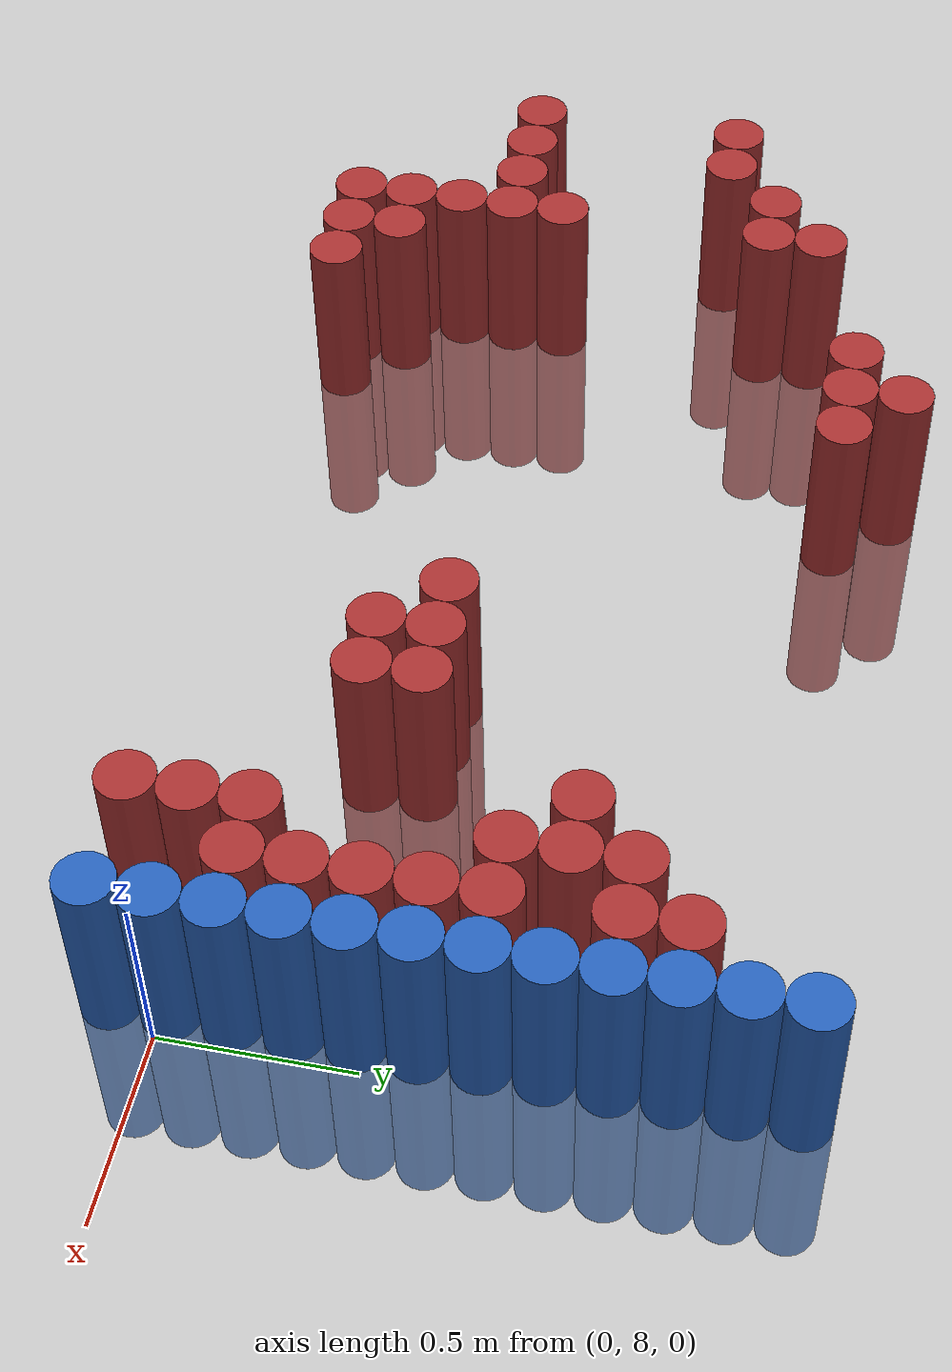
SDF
<sdf version="1.6">
 <world name="default">
  <model name="ground_plane">
   <static>1</static>
   <link name="link">
    <collision name="collision">
     <geometry><plane><normal>0 0 1</normal><size>100 100</size></plane></geometry>
     <surface><friction><ode><mu>100</mu><mu2>50</mu2></ode></friction></surface>
    </collision>
    <visual name="visual">
     <cast_shadows>0</cast_shadows>
     <geometry><plane><normal>0 0 1</normal><size>100 100</size></plane></geometry>
     <material>
      <script><uri>file://media/materials/scripts/gazebo.material</uri><name>Gazebo/Grey</name></script>
     </material>
    </visual>
   </link>
  </model>
  <model name="unit_cylinder_222">
   <static>1</static>
   <pose>-3.075000 8.325000 0.000000 0.000000 0.000000 0.000000</pose>
   <link name="link">
    <inertial>
     <mass>1</mass>
     <inertia><ixx>0.145833</ixx><ixy>0</ixy><ixz>0</ixz><iyy>0.145833</iyy><iyz>0</iyz><izz>0.125</izz></inertia>
    </inertial>
    <collision name="collision">
     <geometry><cylinder><radius>0.075000</radius><length>1</length></cylinder></geometry>
    </collision>
    <visual name="visual">
     <geometry><cylinder><radius>0.075000</radius><length>1</length></cylinder></geometry>
     <material>
      <ambient>0.648000 0.192000 0.192000 1</ambient>
      <diffuse>0.648000 0.192000 0.192000 1</diffuse>
     </material>
     <material>
      <script><name>Gazebo/Grey</name><uri>file://media/materials/scripts/gazebo.material</uri></script>
     </material>
    </visual>
   </link>
  </model>
  <model name="unit_cylinder_223">
   <static>1</static>
   <pose>-3.075000 8.925000 0.000000 0.000000 0.000000 0.000000</pose>
   <link name="link">
    <inertial>
     <mass>1</mass>
     <inertia><ixx>0.145833</ixx><ixy>0</ixy><ixz>0</ixz><iyy>0.145833</iyy><iyz>0</iyz><izz>0.125</izz></inertia>
    </inertial>
    <collision name="collision">
     <geometry><cylinder><radius>0.075000</radius><length>1</length></cylinder></geometry>
    </collision>
    <visual name="visual">
     <geometry><cylinder><radius>0.075000</radius><length>1</length></cylinder></geometry>
     <material>
      <ambient>0.648000 0.192000 0.192000 1</ambient>
      <diffuse>0.648000 0.192000 0.192000 1</diffuse>
     </material>
     <material>
      <script><name>Gazebo/Grey</name><uri>file://media/materials/scripts/gazebo.material</uri></script>
     </material>
    </visual>
   </link>
  </model>
  <model name="unit_cylinder_230">
   <static>1</static>
   <pose>-2.925000 8.325000 0.000000 0.000000 0.000000 0.000000</pose>
   <link name="link">
    <inertial>
     <mass>1</mass>
     <inertia><ixx>0.145833</ixx><ixy>0</ixy><ixz>0</ixz><iyy>0.145833</iyy><iyz>0</iyz><izz>0.125</izz></inertia>
    </inertial>
    <collision name="collision">
     <geometry><cylinder><radius>0.075000</radius><length>1</length></cylinder></geometry>
    </collision>
    <visual name="visual">
     <geometry><cylinder><radius>0.075000</radius><length>1</length></cylinder></geometry>
     <material>
      <ambient>0.648000 0.192000 0.192000 1</ambient>
      <diffuse>0.648000 0.192000 0.192000 1</diffuse>
     </material>
     <material>
      <script><name>Gazebo/Grey</name><uri>file://media/materials/scripts/gazebo.material</uri></script>
     </material>
    </visual>
   </link>
  </model>
  <model name="unit_cylinder_231">
   <static>1</static>
   <pose>-2.925000 8.925000 0.000000 0.000000 0.000000 0.000000</pose>
   <link name="link">
    <inertial>
     <mass>1</mass>
     <inertia><ixx>0.145833</ixx><ixy>0</ixy><ixz>0</ixz><iyy>0.145833</iyy><iyz>0</iyz><izz>0.125</izz></inertia>
    </inertial>
    <collision name="collision">
     <geometry><cylinder><radius>0.075000</radius><length>1</length></cylinder></geometry>
    </collision>
    <visual name="visual">
     <geometry><cylinder><radius>0.075000</radius><length>1</length></cylinder></geometry>
     <material>
      <ambient>0.648000 0.192000 0.192000 1</ambient>
      <diffuse>0.648000 0.192000 0.192000 1</diffuse>
     </material>
     <material>
      <script><name>Gazebo/Grey</name><uri>file://media/materials/scripts/gazebo.material</uri></script>
     </material>
    </visual>
   </link>
  </model>
  <model name="unit_cylinder_237">
   <static>1</static>
   <pose>-2.775000 8.325000 0.000000 0.000000 0.000000 0.000000</pose>
   <link name="link">
    <inertial>
     <mass>1</mass>
     <inertia><ixx>0.145833</ixx><ixy>0</ixy><ixz>0</ixz><iyy>0.145833</iyy><iyz>0</iyz><izz>0.125</izz></inertia>
    </inertial>
    <collision name="collision">
     <geometry><cylinder><radius>0.075000</radius><length>1</length></cylinder></geometry>
    </collision>
    <visual name="visual">
     <geometry><cylinder><radius>0.075000</radius><length>1</length></cylinder></geometry>
     <material>
      <ambient>0.648000 0.192000 0.192000 1</ambient>
      <diffuse>0.648000 0.192000 0.192000 1</diffuse>
     </material>
     <material>
      <script><name>Gazebo/Grey</name><uri>file://media/materials/scripts/gazebo.material</uri></script>
     </material>
    </visual>
   </link>
  </model>
  <model name="unit_cylinder_238">
   <static>1</static>
   <pose>-2.775000 9.075000 0.000000 0.000000 0.000000 0.000000</pose>
   <link name="link">
    <inertial>
     <mass>1</mass>
     <inertia><ixx>0.145833</ixx><ixy>0</ixy><ixz>0</ixz><iyy>0.145833</iyy><iyz>0</iyz><izz>0.125</izz></inertia>
    </inertial>
    <collision name="collision">
     <geometry><cylinder><radius>0.075000</radius><length>1</length></cylinder></geometry>
    </collision>
    <visual name="visual">
     <geometry><cylinder><radius>0.075000</radius><length>1</length></cylinder></geometry>
     <material>
      <ambient>0.648000 0.192000 0.192000 1</ambient>
      <diffuse>0.648000 0.192000 0.192000 1</diffuse>
     </material>
     <material>
      <script><name>Gazebo/Grey</name><uri>file://media/materials/scripts/gazebo.material</uri></script>
     </material>
    </visual>
   </link>
  </model>
  <model name="unit_cylinder_239">
   <static>1</static>
   <pose>-2.625000 7.875000 0.000000 0.000000 0.000000 0.000000</pose>
   <link name="link">
    <inertial>
     <mass>1</mass>
     <inertia><ixx>0.145833</ixx><ixy>0</ixy><ixz>0</ixz><iyy>0.145833</iyy><iyz>0</iyz><izz>0.125</izz></inertia>
    </inertial>
    <collision name="collision">
     <geometry><cylinder><radius>0.075000</radius><length>1</length></cylinder></geometry>
    </collision>
    <visual name="visual">
     <geometry><cylinder><radius>0.075000</radius><length>1</length></cylinder></geometry>
     <material>
      <ambient>0.648000 0.192000 0.192000 1</ambient>
      <diffuse>0.648000 0.192000 0.192000 1</diffuse>
     </material>
     <material>
      <script><name>Gazebo/Grey</name><uri>file://media/materials/scripts/gazebo.material</uri></script>
     </material>
    </visual>
   </link>
  </model>
  <model name="unit_cylinder_240">
   <static>1</static>
   <pose>-2.625000 8.025000 0.000000 0.000000 0.000000 0.000000</pose>
   <link name="link">
    <inertial>
     <mass>1</mass>
     <inertia><ixx>0.145833</ixx><ixy>0</ixy><ixz>0</ixz><iyy>0.145833</iyy><iyz>0</iyz><izz>0.125</izz></inertia>
    </inertial>
    <collision name="collision">
     <geometry><cylinder><radius>0.075000</radius><length>1</length></cylinder></geometry>
    </collision>
    <visual name="visual">
     <geometry><cylinder><radius>0.075000</radius><length>1</length></cylinder></geometry>
     <material>
      <ambient>0.648000 0.192000 0.192000 1</ambient>
      <diffuse>0.648000 0.192000 0.192000 1</diffuse>
     </material>
     <material>
      <script><name>Gazebo/Grey</name><uri>file://media/materials/scripts/gazebo.material</uri></script>
     </material>
    </visual>
   </link>
  </model>
  <model name="unit_cylinder_241">
   <static>1</static>
   <pose>-2.625000 8.175000 0.000000 0.000000 0.000000 0.000000</pose>
   <link name="link">
    <inertial>
     <mass>1</mass>
     <inertia><ixx>0.145833</ixx><ixy>0</ixy><ixz>0</ixz><iyy>0.145833</iyy><iyz>0</iyz><izz>0.125</izz></inertia>
    </inertial>
    <collision name="collision">
     <geometry><cylinder><radius>0.075000</radius><length>1</length></cylinder></geometry>
    </collision>
    <visual name="visual">
     <geometry><cylinder><radius>0.075000</radius><length>1</length></cylinder></geometry>
     <material>
      <ambient>0.648000 0.192000 0.192000 1</ambient>
      <diffuse>0.648000 0.192000 0.192000 1</diffuse>
     </material>
     <material>
      <script><name>Gazebo/Grey</name><uri>file://media/materials/scripts/gazebo.material</uri></script>
     </material>
    </visual>
   </link>
  </model>
  <model name="unit_cylinder_242">
   <static>1</static>
   <pose>-2.625000 8.325000 0.000000 0.000000 0.000000 0.000000</pose>
   <link name="link">
    <inertial>
     <mass>1</mass>
     <inertia><ixx>0.145833</ixx><ixy>0</ixy><ixz>0</ixz><iyy>0.145833</iyy><iyz>0</iyz><izz>0.125</izz></inertia>
    </inertial>
    <collision name="collision">
     <geometry><cylinder><radius>0.075000</radius><length>1</length></cylinder></geometry>
    </collision>
    <visual name="visual">
     <geometry><cylinder><radius>0.075000</radius><length>1</length></cylinder></geometry>
     <material>
      <ambient>0.648000 0.192000 0.192000 1</ambient>
      <diffuse>0.648000 0.192000 0.192000 1</diffuse>
     </material>
     <material>
      <script><name>Gazebo/Grey</name><uri>file://media/materials/scripts/gazebo.material</uri></script>
     </material>
    </visual>
   </link>
  </model>
  <model name="unit_cylinder_243">
   <static>1</static>
   <pose>-2.625000 8.475000 0.000000 0.000000 0.000000 0.000000</pose>
   <link name="link">
    <inertial>
     <mass>1</mass>
     <inertia><ixx>0.145833</ixx><ixy>0</ixy><ixz>0</ixz><iyy>0.145833</iyy><iyz>0</iyz><izz>0.125</izz></inertia>
    </inertial>
    <collision name="collision">
     <geometry><cylinder><radius>0.075000</radius><length>1</length></cylinder></geometry>
    </collision>
    <visual name="visual">
     <geometry><cylinder><radius>0.075000</radius><length>1</length></cylinder></geometry>
     <material>
      <ambient>0.648000 0.192000 0.192000 1</ambient>
      <diffuse>0.648000 0.192000 0.192000 1</diffuse>
     </material>
     <material>
      <script><name>Gazebo/Grey</name><uri>file://media/materials/scripts/gazebo.material</uri></script>
     </material>
    </visual>
   </link>
  </model>
  <model name="unit_cylinder_244">
   <static>1</static>
   <pose>-2.625000 9.075000 0.000000 0.000000 0.000000 0.000000</pose>
   <link name="link">
    <inertial>
     <mass>1</mass>
     <inertia><ixx>0.145833</ixx><ixy>0</ixy><ixz>0</ixz><iyy>0.145833</iyy><iyz>0</iyz><izz>0.125</izz></inertia>
    </inertial>
    <collision name="collision">
     <geometry><cylinder><radius>0.075000</radius><length>1</length></cylinder></geometry>
    </collision>
    <visual name="visual">
     <geometry><cylinder><radius>0.075000</radius><length>1</length></cylinder></geometry>
     <material>
      <ambient>0.648000 0.192000 0.192000 1</ambient>
      <diffuse>0.648000 0.192000 0.192000 1</diffuse>
     </material>
     <material>
      <script><name>Gazebo/Grey</name><uri>file://media/materials/scripts/gazebo.material</uri></script>
     </material>
    </visual>
   </link>
  </model>
  <model name="unit_cylinder_245">
   <static>1</static>
   <pose>-2.625000 9.225000 0.000000 0.000000 0.000000 0.000000</pose>
   <link name="link">
    <inertial>
     <mass>1</mass>
     <inertia><ixx>0.145833</ixx><ixy>0</ixy><ixz>0</ixz><iyy>0.145833</iyy><iyz>0</iyz><izz>0.125</izz></inertia>
    </inertial>
    <collision name="collision">
     <geometry><cylinder><radius>0.075000</radius><length>1</length></cylinder></geometry>
    </collision>
    <visual name="visual">
     <geometry><cylinder><radius>0.075000</radius><length>1</length></cylinder></geometry>
     <material>
      <ambient>0.648000 0.192000 0.192000 1</ambient>
      <diffuse>0.648000 0.192000 0.192000 1</diffuse>
     </material>
     <material>
      <script><name>Gazebo/Grey</name><uri>file://media/materials/scripts/gazebo.material</uri></script>
     </material>
    </visual>
   </link>
  </model>
  <model name="unit_cylinder_247">
   <static>1</static>
   <pose>-2.475000 7.875000 0.000000 0.000000 0.000000 0.000000</pose>
   <link name="link">
    <inertial>
     <mass>1</mass>
     <inertia><ixx>0.145833</ixx><ixy>0</ixy><ixz>0</ixz><iyy>0.145833</iyy><iyz>0</iyz><izz>0.125</izz></inertia>
    </inertial>
    <collision name="collision">
     <geometry><cylinder><radius>0.075000</radius><length>1</length></cylinder></geometry>
    </collision>
    <visual name="visual">
     <geometry><cylinder><radius>0.075000</radius><length>1</length></cylinder></geometry>
     <material>
      <ambient>0.648000 0.192000 0.192000 1</ambient>
      <diffuse>0.648000 0.192000 0.192000 1</diffuse>
     </material>
     <material>
      <script><name>Gazebo/Grey</name><uri>file://media/materials/scripts/gazebo.material</uri></script>
     </material>
    </visual>
   </link>
  </model>
  <model name="unit_cylinder_248">
   <static>1</static>
   <pose>-2.475000 8.025000 0.000000 0.000000 0.000000 0.000000</pose>
   <link name="link">
    <inertial>
     <mass>1</mass>
     <inertia><ixx>0.145833</ixx><ixy>0</ixy><ixz>0</ixz><iyy>0.145833</iyy><iyz>0</iyz><izz>0.125</izz></inertia>
    </inertial>
    <collision name="collision">
     <geometry><cylinder><radius>0.075000</radius><length>1</length></cylinder></geometry>
    </collision>
    <visual name="visual">
     <geometry><cylinder><radius>0.075000</radius><length>1</length></cylinder></geometry>
     <material>
      <ambient>0.648000 0.192000 0.192000 1</ambient>
      <diffuse>0.648000 0.192000 0.192000 1</diffuse>
     </material>
     <material>
      <script><name>Gazebo/Grey</name><uri>file://media/materials/scripts/gazebo.material</uri></script>
     </material>
    </visual>
   </link>
  </model>
  <model name="unit_cylinder_251">
   <static>1</static>
   <pose>-2.325000 7.875000 0.000000 0.000000 0.000000 0.000000</pose>
   <link name="link">
    <inertial>
     <mass>1</mass>
     <inertia><ixx>0.145833</ixx><ixy>0</ixy><ixz>0</ixz><iyy>0.145833</iyy><iyz>0</iyz><izz>0.125</izz></inertia>
    </inertial>
    <collision name="collision">
     <geometry><cylinder><radius>0.075000</radius><length>1</length></cylinder></geometry>
    </collision>
    <visual name="visual">
     <geometry><cylinder><radius>0.075000</radius><length>1</length></cylinder></geometry>
     <material>
      <ambient>0.648000 0.192000 0.192000 1</ambient>
      <diffuse>0.648000 0.192000 0.192000 1</diffuse>
     </material>
     <material>
      <script><name>Gazebo/Grey</name><uri>file://media/materials/scripts/gazebo.material</uri></script>
     </material>
    </visual>
   </link>
  </model>
  <model name="unit_cylinder_254">
   <static>1</static>
   <pose>-2.175000 9.375000 0.000000 0.000000 0.000000 0.000000</pose>
   <link name="link">
    <inertial>
     <mass>1</mass>
     <inertia><ixx>0.145833</ixx><ixy>0</ixy><ixz>0</ixz><iyy>0.145833</iyy><iyz>0</iyz><izz>0.125</izz></inertia>
    </inertial>
    <collision name="collision">
     <geometry><cylinder><radius>0.075000</radius><length>1</length></cylinder></geometry>
    </collision>
    <visual name="visual">
     <geometry><cylinder><radius>0.075000</radius><length>1</length></cylinder></geometry>
     <material>
      <ambient>0.648000 0.192000 0.192000 1</ambient>
      <diffuse>0.648000 0.192000 0.192000 1</diffuse>
     </material>
     <material>
      <script><name>Gazebo/Grey</name><uri>file://media/materials/scripts/gazebo.material</uri></script>
     </material>
    </visual>
   </link>
  </model>
  <model name="unit_cylinder_255">
   <static>1</static>
   <pose>-2.025000 9.375000 0.000000 0.000000 0.000000 0.000000</pose>
   <link name="link">
    <inertial>
     <mass>1</mass>
     <inertia><ixx>0.145833</ixx><ixy>0</ixy><ixz>0</ixz><iyy>0.145833</iyy><iyz>0</iyz><izz>0.125</izz></inertia>
    </inertial>
    <collision name="collision">
     <geometry><cylinder><radius>0.075000</radius><length>1</length></cylinder></geometry>
    </collision>
    <visual name="visual">
     <geometry><cylinder><radius>0.075000</radius><length>1</length></cylinder></geometry>
     <material>
      <ambient>0.648000 0.192000 0.192000 1</ambient>
      <diffuse>0.648000 0.192000 0.192000 1</diffuse>
     </material>
     <material>
      <script><name>Gazebo/Grey</name><uri>file://media/materials/scripts/gazebo.material</uri></script>
     </material>
    </visual>
   </link>
  </model>
  <model name="unit_cylinder_256">
   <static>1</static>
   <pose>-2.025000 9.525000 0.000000 0.000000 0.000000 0.000000</pose>
   <link name="link">
    <inertial>
     <mass>1</mass>
     <inertia><ixx>0.145833</ixx><ixy>0</ixy><ixz>0</ixz><iyy>0.145833</iyy><iyz>0</iyz><izz>0.125</izz></inertia>
    </inertial>
    <collision name="collision">
     <geometry><cylinder><radius>0.075000</radius><length>1</length></cylinder></geometry>
    </collision>
    <visual name="visual">
     <geometry><cylinder><radius>0.075000</radius><length>1</length></cylinder></geometry>
     <material>
      <ambient>0.648000 0.192000 0.192000 1</ambient>
      <diffuse>0.648000 0.192000 0.192000 1</diffuse>
     </material>
     <material>
      <script><name>Gazebo/Grey</name><uri>file://media/materials/scripts/gazebo.material</uri></script>
     </material>
    </visual>
   </link>
  </model>
  <model name="unit_cylinder_259">
   <static>1</static>
   <pose>-1.875000 9.375000 0.000000 0.000000 0.000000 0.000000</pose>
   <link name="link">
    <inertial>
     <mass>1</mass>
     <inertia><ixx>0.145833</ixx><ixy>0</ixy><ixz>0</ixz><iyy>0.145833</iyy><iyz>0</iyz><izz>0.125</izz></inertia>
    </inertial>
    <collision name="collision">
     <geometry><cylinder><radius>0.075000</radius><length>1</length></cylinder></geometry>
    </collision>
    <visual name="visual">
     <geometry><cylinder><radius>0.075000</radius><length>1</length></cylinder></geometry>
     <material>
      <ambient>0.648000 0.192000 0.192000 1</ambient>
      <diffuse>0.648000 0.192000 0.192000 1</diffuse>
     </material>
     <material>
      <script><name>Gazebo/Grey</name><uri>file://media/materials/scripts/gazebo.material</uri></script>
     </material>
    </visual>
   </link>
  </model>
  <model name="unit_cylinder_273">
   <static>1</static>
   <pose>-1.125000 8.475000 0.000000 0.000000 0.000000 0.000000</pose>
   <link name="link">
    <inertial>
     <mass>1</mass>
     <inertia><ixx>0.145833</ixx><ixy>0</ixy><ixz>0</ixz><iyy>0.145833</iyy><iyz>0</iyz><izz>0.125</izz></inertia>
    </inertial>
    <collision name="collision">
     <geometry><cylinder><radius>0.075000</radius><length>1</length></cylinder></geometry>
    </collision>
    <visual name="visual">
     <geometry><cylinder><radius>0.075000</radius><length>1</length></cylinder></geometry>
     <material>
      <ambient>0.648000 0.192000 0.192000 1</ambient>
      <diffuse>0.648000 0.192000 0.192000 1</diffuse>
     </material>
     <material>
      <script><name>Gazebo/Grey</name><uri>file://media/materials/scripts/gazebo.material</uri></script>
     </material>
    </visual>
   </link>
  </model>
  <model name="unit_cylinder_276">
   <static>1</static>
   <pose>-0.975000 8.325000 0.000000 0.000000 0.000000 0.000000</pose>
   <link name="link">
    <inertial>
     <mass>1</mass>
     <inertia><ixx>0.145833</ixx><ixy>0</ixy><ixz>0</ixz><iyy>0.145833</iyy><iyz>0</iyz><izz>0.125</izz></inertia>
    </inertial>
    <collision name="collision">
     <geometry><cylinder><radius>0.075000</radius><length>1</length></cylinder></geometry>
    </collision>
    <visual name="visual">
     <geometry><cylinder><radius>0.075000</radius><length>1</length></cylinder></geometry>
     <material>
      <ambient>0.648000 0.192000 0.192000 1</ambient>
      <diffuse>0.648000 0.192000 0.192000 1</diffuse>
     </material>
     <material>
      <script><name>Gazebo/Grey</name><uri>file://media/materials/scripts/gazebo.material</uri></script>
     </material>
    </visual>
   </link>
  </model>
  <model name="unit_cylinder_277">
   <static>1</static>
   <pose>-0.975000 8.475000 0.000000 0.000000 0.000000 0.000000</pose>
   <link name="link">
    <inertial>
     <mass>1</mass>
     <inertia><ixx>0.145833</ixx><ixy>0</ixy><ixz>0</ixz><iyy>0.145833</iyy><iyz>0</iyz><izz>0.125</izz></inertia>
    </inertial>
    <collision name="collision">
     <geometry><cylinder><radius>0.075000</radius><length>1</length></cylinder></geometry>
    </collision>
    <visual name="visual">
     <geometry><cylinder><radius>0.075000</radius><length>1</length></cylinder></geometry>
     <material>
      <ambient>0.648000 0.192000 0.192000 1</ambient>
      <diffuse>0.648000 0.192000 0.192000 1</diffuse>
     </material>
     <material>
      <script><name>Gazebo/Grey</name><uri>file://media/materials/scripts/gazebo.material</uri></script>
     </material>
    </visual>
   </link>
  </model>
  <model name="unit_cylinder_282">
   <static>1</static>
   <pose>-0.825000 8.325000 0.000000 0.000000 0.000000 0.000000</pose>
   <link name="link">
    <inertial>
     <mass>1</mass>
     <inertia><ixx>0.145833</ixx><ixy>0</ixy><ixz>0</ixz><iyy>0.145833</iyy><iyz>0</iyz><izz>0.125</izz></inertia>
    </inertial>
    <collision name="collision">
     <geometry><cylinder><radius>0.075000</radius><length>1</length></cylinder></geometry>
    </collision>
    <visual name="visual">
     <geometry><cylinder><radius>0.075000</radius><length>1</length></cylinder></geometry>
     <material>
      <ambient>0.648000 0.192000 0.192000 1</ambient>
      <diffuse>0.648000 0.192000 0.192000 1</diffuse>
     </material>
     <material>
      <script><name>Gazebo/Grey</name><uri>file://media/materials/scripts/gazebo.material</uri></script>
     </material>
    </visual>
   </link>
  </model>
  <model name="unit_cylinder_283">
   <static>1</static>
   <pose>-0.825000 8.475000 0.000000 0.000000 0.000000 0.000000</pose>
   <link name="link">
    <inertial>
     <mass>1</mass>
     <inertia><ixx>0.145833</ixx><ixy>0</ixy><ixz>0</ixz><iyy>0.145833</iyy><iyz>0</iyz><izz>0.125</izz></inertia>
    </inertial>
    <collision name="collision">
     <geometry><cylinder><radius>0.075000</radius><length>1</length></cylinder></geometry>
    </collision>
    <visual name="visual">
     <geometry><cylinder><radius>0.075000</radius><length>1</length></cylinder></geometry>
     <material>
      <ambient>0.648000 0.192000 0.192000 1</ambient>
      <diffuse>0.648000 0.192000 0.192000 1</diffuse>
     </material>
     <material>
      <script><name>Gazebo/Grey</name><uri>file://media/materials/scripts/gazebo.material</uri></script>
     </material>
    </visual>
   </link>
  </model>
  <model name="unit_cylinder_290">
   <static>1</static>
   <pose>-0.525000 8.925000 0.000000 0.000000 0.000000 0.000000</pose>
   <link name="link">
    <inertial>
     <mass>1</mass>
     <inertia><ixx>0.145833</ixx><ixy>0</ixy><ixz>0</ixz><iyy>0.145833</iyy><iyz>0</iyz><izz>0.125</izz></inertia>
    </inertial>
    <collision name="collision">
     <geometry><cylinder><radius>0.075000</radius><length>1</length></cylinder></geometry>
    </collision>
    <visual name="visual">
     <geometry><cylinder><radius>0.075000</radius><length>1</length></cylinder></geometry>
     <material>
      <ambient>0.648000 0.192000 0.192000 1</ambient>
      <diffuse>0.648000 0.192000 0.192000 1</diffuse>
     </material>
     <material>
      <script><name>Gazebo/Grey</name><uri>file://media/materials/scripts/gazebo.material</uri></script>
     </material>
    </visual>
   </link>
  </model>
  <model name="unit_cylinder_298">
   <static>1</static>
   <pose>-0.375000 7.875000 0.000000 0.000000 0.000000 0.000000</pose>
   <link name="link">
    <inertial>
     <mass>1</mass>
     <inertia><ixx>0.145833</ixx><ixy>0</ixy><ixz>0</ixz><iyy>0.145833</iyy><iyz>0</iyz><izz>0.125</izz></inertia>
    </inertial>
    <collision name="collision">
     <geometry><cylinder><radius>0.075000</radius><length>1</length></cylinder></geometry>
    </collision>
    <visual name="visual">
     <geometry><cylinder><radius>0.075000</radius><length>1</length></cylinder></geometry>
     <material>
      <ambient>0.648000 0.192000 0.192000 1</ambient>
      <diffuse>0.648000 0.192000 0.192000 1</diffuse>
     </material>
     <material>
      <script><name>Gazebo/Grey</name><uri>file://media/materials/scripts/gazebo.material</uri></script>
     </material>
    </visual>
   </link>
  </model>
  <model name="unit_cylinder_299">
   <static>1</static>
   <pose>-0.375000 8.025000 0.000000 0.000000 0.000000 0.000000</pose>
   <link name="link">
    <inertial>
     <mass>1</mass>
     <inertia><ixx>0.145833</ixx><ixy>0</ixy><ixz>0</ixz><iyy>0.145833</iyy><iyz>0</iyz><izz>0.125</izz></inertia>
    </inertial>
    <collision name="collision">
     <geometry><cylinder><radius>0.075000</radius><length>1</length></cylinder></geometry>
    </collision>
    <visual name="visual">
     <geometry><cylinder><radius>0.075000</radius><length>1</length></cylinder></geometry>
     <material>
      <ambient>0.648000 0.192000 0.192000 1</ambient>
      <diffuse>0.648000 0.192000 0.192000 1</diffuse>
     </material>
     <material>
      <script><name>Gazebo/Grey</name><uri>file://media/materials/scripts/gazebo.material</uri></script>
     </material>
    </visual>
   </link>
  </model>
  <model name="unit_cylinder_300">
   <static>1</static>
   <pose>-0.375000 8.175000 0.000000 0.000000 0.000000 0.000000</pose>
   <link name="link">
    <inertial>
     <mass>1</mass>
     <inertia><ixx>0.145833</ixx><ixy>0</ixy><ixz>0</ixz><iyy>0.145833</iyy><iyz>0</iyz><izz>0.125</izz></inertia>
    </inertial>
    <collision name="collision">
     <geometry><cylinder><radius>0.075000</radius><length>1</length></cylinder></geometry>
    </collision>
    <visual name="visual">
     <geometry><cylinder><radius>0.075000</radius><length>1</length></cylinder></geometry>
     <material>
      <ambient>0.648000 0.192000 0.192000 1</ambient>
      <diffuse>0.648000 0.192000 0.192000 1</diffuse>
     </material>
     <material>
      <script><name>Gazebo/Grey</name><uri>file://media/materials/scripts/gazebo.material</uri></script>
     </material>
    </visual>
   </link>
  </model>
  <model name="unit_cylinder_301">
   <static>1</static>
   <pose>-0.375000 8.775000 0.000000 0.000000 0.000000 0.000000</pose>
   <link name="link">
    <inertial>
     <mass>1</mass>
     <inertia><ixx>0.145833</ixx><ixy>0</ixy><ixz>0</ixz><iyy>0.145833</iyy><iyz>0</iyz><izz>0.125</izz></inertia>
    </inertial>
    <collision name="collision">
     <geometry><cylinder><radius>0.075000</radius><length>1</length></cylinder></geometry>
    </collision>
    <visual name="visual">
     <geometry><cylinder><radius>0.075000</radius><length>1</length></cylinder></geometry>
     <material>
      <ambient>0.648000 0.192000 0.192000 1</ambient>
      <diffuse>0.648000 0.192000 0.192000 1</diffuse>
     </material>
     <material>
      <script><name>Gazebo/Grey</name><uri>file://media/materials/scripts/gazebo.material</uri></script>
     </material>
    </visual>
   </link>
  </model>
  <model name="unit_cylinder_302">
   <static>1</static>
   <pose>-0.375000 8.925000 0.000000 0.000000 0.000000 0.000000</pose>
   <link name="link">
    <inertial>
     <mass>1</mass>
     <inertia><ixx>0.145833</ixx><ixy>0</ixy><ixz>0</ixz><iyy>0.145833</iyy><iyz>0</iyz><izz>0.125</izz></inertia>
    </inertial>
    <collision name="collision">
     <geometry><cylinder><radius>0.075000</radius><length>1</length></cylinder></geometry>
    </collision>
    <visual name="visual">
     <geometry><cylinder><radius>0.075000</radius><length>1</length></cylinder></geometry>
     <material>
      <ambient>0.648000 0.192000 0.192000 1</ambient>
      <diffuse>0.648000 0.192000 0.192000 1</diffuse>
     </material>
     <material>
      <script><name>Gazebo/Grey</name><uri>file://media/materials/scripts/gazebo.material</uri></script>
     </material>
    </visual>
   </link>
  </model>
  <model name="unit_cylinder_303">
   <static>1</static>
   <pose>-0.375000 9.075000 0.000000 0.000000 0.000000 0.000000</pose>
   <link name="link">
    <inertial>
     <mass>1</mass>
     <inertia><ixx>0.145833</ixx><ixy>0</ixy><ixz>0</ixz><iyy>0.145833</iyy><iyz>0</iyz><izz>0.125</izz></inertia>
    </inertial>
    <collision name="collision">
     <geometry><cylinder><radius>0.075000</radius><length>1</length></cylinder></geometry>
    </collision>
    <visual name="visual">
     <geometry><cylinder><radius>0.075000</radius><length>1</length></cylinder></geometry>
     <material>
      <ambient>0.648000 0.192000 0.192000 1</ambient>
      <diffuse>0.648000 0.192000 0.192000 1</diffuse>
     </material>
     <material>
      <script><name>Gazebo/Grey</name><uri>file://media/materials/scripts/gazebo.material</uri></script>
     </material>
    </visual>
   </link>
  </model>
  <model name="unit_cylinder_314">
   <static>1</static>
   <pose>-0.225000 8.175000 0.000000 0.000000 0.000000 0.000000</pose>
   <link name="link">
    <inertial>
     <mass>1</mass>
     <inertia><ixx>0.145833</ixx><ixy>0</ixy><ixz>0</ixz><iyy>0.145833</iyy><iyz>0</iyz><izz>0.125</izz></inertia>
    </inertial>
    <collision name="collision">
     <geometry><cylinder><radius>0.075000</radius><length>1</length></cylinder></geometry>
    </collision>
    <visual name="visual">
     <geometry><cylinder><radius>0.075000</radius><length>1</length></cylinder></geometry>
     <material>
      <ambient>0.648000 0.192000 0.192000 1</ambient>
      <diffuse>0.648000 0.192000 0.192000 1</diffuse>
     </material>
     <material>
      <script><name>Gazebo/Grey</name><uri>file://media/materials/scripts/gazebo.material</uri></script>
     </material>
    </visual>
   </link>
  </model>
  <model name="unit_cylinder_315">
   <static>1</static>
   <pose>-0.225000 8.325000 0.000000 0.000000 0.000000 0.000000</pose>
   <link name="link">
    <inertial>
     <mass>1</mass>
     <inertia><ixx>0.145833</ixx><ixy>0</ixy><ixz>0</ixz><iyy>0.145833</iyy><iyz>0</iyz><izz>0.125</izz></inertia>
    </inertial>
    <collision name="collision">
     <geometry><cylinder><radius>0.075000</radius><length>1</length></cylinder></geometry>
    </collision>
    <visual name="visual">
     <geometry><cylinder><radius>0.075000</radius><length>1</length></cylinder></geometry>
     <material>
      <ambient>0.648000 0.192000 0.192000 1</ambient>
      <diffuse>0.648000 0.192000 0.192000 1</diffuse>
     </material>
     <material>
      <script><name>Gazebo/Grey</name><uri>file://media/materials/scripts/gazebo.material</uri></script>
     </material>
    </visual>
   </link>
  </model>
  <model name="unit_cylinder_316">
   <static>1</static>
   <pose>-0.225000 8.475000 0.000000 0.000000 0.000000 0.000000</pose>
   <link name="link">
    <inertial>
     <mass>1</mass>
     <inertia><ixx>0.145833</ixx><ixy>0</ixy><ixz>0</ixz><iyy>0.145833</iyy><iyz>0</iyz><izz>0.125</izz></inertia>
    </inertial>
    <collision name="collision">
     <geometry><cylinder><radius>0.075000</radius><length>1</length></cylinder></geometry>
    </collision>
    <visual name="visual">
     <geometry><cylinder><radius>0.075000</radius><length>1</length></cylinder></geometry>
     <material>
      <ambient>0.648000 0.192000 0.192000 1</ambient>
      <diffuse>0.648000 0.192000 0.192000 1</diffuse>
     </material>
     <material>
      <script><name>Gazebo/Grey</name><uri>file://media/materials/scripts/gazebo.material</uri></script>
     </material>
    </visual>
   </link>
  </model>
  <model name="unit_cylinder_317">
   <static>1</static>
   <pose>-0.225000 8.625000 0.000000 0.000000 0.000000 0.000000</pose>
   <link name="link">
    <inertial>
     <mass>1</mass>
     <inertia><ixx>0.145833</ixx><ixy>0</ixy><ixz>0</ixz><iyy>0.145833</iyy><iyz>0</iyz><izz>0.125</izz></inertia>
    </inertial>
    <collision name="collision">
     <geometry><cylinder><radius>0.075000</radius><length>1</length></cylinder></geometry>
    </collision>
    <visual name="visual">
     <geometry><cylinder><radius>0.075000</radius><length>1</length></cylinder></geometry>
     <material>
      <ambient>0.648000 0.192000 0.192000 1</ambient>
      <diffuse>0.648000 0.192000 0.192000 1</diffuse>
     </material>
     <material>
      <script><name>Gazebo/Grey</name><uri>file://media/materials/scripts/gazebo.material</uri></script>
     </material>
    </visual>
   </link>
  </model>
  <model name="unit_cylinder_318">
   <static>1</static>
   <pose>-0.225000 8.775000 0.000000 0.000000 0.000000 0.000000</pose>
   <link name="link">
    <inertial>
     <mass>1</mass>
     <inertia><ixx>0.145833</ixx><ixy>0</ixy><ixz>0</ixz><iyy>0.145833</iyy><iyz>0</iyz><izz>0.125</izz></inertia>
    </inertial>
    <collision name="collision">
     <geometry><cylinder><radius>0.075000</radius><length>1</length></cylinder></geometry>
    </collision>
    <visual name="visual">
     <geometry><cylinder><radius>0.075000</radius><length>1</length></cylinder></geometry>
     <material>
      <ambient>0.648000 0.192000 0.192000 1</ambient>
      <diffuse>0.648000 0.192000 0.192000 1</diffuse>
     </material>
     <material>
      <script><name>Gazebo/Grey</name><uri>file://media/materials/scripts/gazebo.material</uri></script>
     </material>
    </visual>
   </link>
  </model>
  <model name="unit_cylinder_319">
   <static>1</static>
   <pose>-0.225000 9.075000 0.000000 0.000000 0.000000 0.000000</pose>
   <link name="link">
    <inertial>
     <mass>1</mass>
     <inertia><ixx>0.145833</ixx><ixy>0</ixy><ixz>0</ixz><iyy>0.145833</iyy><iyz>0</iyz><izz>0.125</izz></inertia>
    </inertial>
    <collision name="collision">
     <geometry><cylinder><radius>0.075000</radius><length>1</length></cylinder></geometry>
    </collision>
    <visual name="visual">
     <geometry><cylinder><radius>0.075000</radius><length>1</length></cylinder></geometry>
     <material>
      <ambient>0.648000 0.192000 0.192000 1</ambient>
      <diffuse>0.648000 0.192000 0.192000 1</diffuse>
     </material>
     <material>
      <script><name>Gazebo/Grey</name><uri>file://media/materials/scripts/gazebo.material</uri></script>
     </material>
    </visual>
   </link>
  </model>
  <model name="unit_cylinder_320">
   <static>1</static>
   <pose>-0.225000 9.225000 0.000000 0.000000 0.000000 0.000000</pose>
   <link name="link">
    <inertial>
     <mass>1</mass>
     <inertia><ixx>0.145833</ixx><ixy>0</ixy><ixz>0</ixz><iyy>0.145833</iyy><iyz>0</iyz><izz>0.125</izz></inertia>
    </inertial>
    <collision name="collision">
     <geometry><cylinder><radius>0.075000</radius><length>1</length></cylinder></geometry>
    </collision>
    <visual name="visual">
     <geometry><cylinder><radius>0.075000</radius><length>1</length></cylinder></geometry>
     <material>
      <ambient>0.648000 0.192000 0.192000 1</ambient>
      <diffuse>0.648000 0.192000 0.192000 1</diffuse>
     </material>
     <material>
      <script><name>Gazebo/Grey</name><uri>file://media/materials/scripts/gazebo.material</uri></script>
     </material>
    </visual>
   </link>
  </model>
  <model name="unit_cylinder_339">
   <static>1</static>
   <pose>-0.075000 7.875000 0.000000 0.000000 0.000000 0.000000</pose>
   <link name="link">
    <inertial>
     <mass>1</mass>
     <inertia><ixx>0.145833</ixx><ixy>0</ixy><ixz>0</ixz><iyy>0.145833</iyy><iyz>0</iyz><izz>0.125</izz></inertia>
    </inertial>
    <collision name="collision">
     <geometry><cylinder><radius>0.075000</radius><length>1</length></cylinder></geometry>
    </collision>
    <visual name="visual">
     <geometry><cylinder><radius>0.075000</radius><length>1</length></cylinder></geometry>
     <material>
      <ambient>0.152000 0.379000 0.720000 1</ambient>
      <diffuse>0.152000 0.379000 0.720000 1</diffuse>
     </material>
     <material>
      <script><name>Gazebo/Grey</name><uri>file://media/materials/scripts/gazebo.material</uri></script>
     </material>
    </visual>
   </link>
  </model>
  <model name="unit_cylinder_340">
   <static>1</static>
   <pose>-0.075000 8.025000 0.000000 0.000000 0.000000 0.000000</pose>
   <link name="link">
    <inertial>
     <mass>1</mass>
     <inertia><ixx>0.145833</ixx><ixy>0</ixy><ixz>0</ixz><iyy>0.145833</iyy><iyz>0</iyz><izz>0.125</izz></inertia>
    </inertial>
    <collision name="collision">
     <geometry><cylinder><radius>0.075000</radius><length>1</length></cylinder></geometry>
    </collision>
    <visual name="visual">
     <geometry><cylinder><radius>0.075000</radius><length>1</length></cylinder></geometry>
     <material>
      <ambient>0.152000 0.379000 0.720000 1</ambient>
      <diffuse>0.152000 0.379000 0.720000 1</diffuse>
     </material>
     <material>
      <script><name>Gazebo/Grey</name><uri>file://media/materials/scripts/gazebo.material</uri></script>
     </material>
    </visual>
   </link>
  </model>
  <model name="unit_cylinder_341">
   <static>1</static>
   <pose>-0.075000 8.175000 0.000000 0.000000 0.000000 0.000000</pose>
   <link name="link">
    <inertial>
     <mass>1</mass>
     <inertia><ixx>0.145833</ixx><ixy>0</ixy><ixz>0</ixz><iyy>0.145833</iyy><iyz>0</iyz><izz>0.125</izz></inertia>
    </inertial>
    <collision name="collision">
     <geometry><cylinder><radius>0.075000</radius><length>1</length></cylinder></geometry>
    </collision>
    <visual name="visual">
     <geometry><cylinder><radius>0.075000</radius><length>1</length></cylinder></geometry>
     <material>
      <ambient>0.152000 0.379000 0.720000 1</ambient>
      <diffuse>0.152000 0.379000 0.720000 1</diffuse>
     </material>
     <material>
      <script><name>Gazebo/Grey</name><uri>file://media/materials/scripts/gazebo.material</uri></script>
     </material>
    </visual>
   </link>
  </model>
  <model name="unit_cylinder_342">
   <static>1</static>
   <pose>-0.075000 8.325000 0.000000 0.000000 0.000000 0.000000</pose>
   <link name="link">
    <inertial>
     <mass>1</mass>
     <inertia><ixx>0.145833</ixx><ixy>0</ixy><ixz>0</ixz><iyy>0.145833</iyy><iyz>0</iyz><izz>0.125</izz></inertia>
    </inertial>
    <collision name="collision">
     <geometry><cylinder><radius>0.075000</radius><length>1</length></cylinder></geometry>
    </collision>
    <visual name="visual">
     <geometry><cylinder><radius>0.075000</radius><length>1</length></cylinder></geometry>
     <material>
      <ambient>0.152000 0.379000 0.720000 1</ambient>
      <diffuse>0.152000 0.379000 0.720000 1</diffuse>
     </material>
     <material>
      <script><name>Gazebo/Grey</name><uri>file://media/materials/scripts/gazebo.material</uri></script>
     </material>
    </visual>
   </link>
  </model>
  <model name="unit_cylinder_343">
   <static>1</static>
   <pose>-0.075000 8.475000 0.000000 0.000000 0.000000 0.000000</pose>
   <link name="link">
    <inertial>
     <mass>1</mass>
     <inertia><ixx>0.145833</ixx><ixy>0</ixy><ixz>0</ixz><iyy>0.145833</iyy><iyz>0</iyz><izz>0.125</izz></inertia>
    </inertial>
    <collision name="collision">
     <geometry><cylinder><radius>0.075000</radius><length>1</length></cylinder></geometry>
    </collision>
    <visual name="visual">
     <geometry><cylinder><radius>0.075000</radius><length>1</length></cylinder></geometry>
     <material>
      <ambient>0.152000 0.379000 0.720000 1</ambient>
      <diffuse>0.152000 0.379000 0.720000 1</diffuse>
     </material>
     <material>
      <script><name>Gazebo/Grey</name><uri>file://media/materials/scripts/gazebo.material</uri></script>
     </material>
    </visual>
   </link>
  </model>
  <model name="unit_cylinder_344">
   <static>1</static>
   <pose>-0.075000 8.625000 0.000000 0.000000 0.000000 0.000000</pose>
   <link name="link">
    <inertial>
     <mass>1</mass>
     <inertia><ixx>0.145833</ixx><ixy>0</ixy><ixz>0</ixz><iyy>0.145833</iyy><iyz>0</iyz><izz>0.125</izz></inertia>
    </inertial>
    <collision name="collision">
     <geometry><cylinder><radius>0.075000</radius><length>1</length></cylinder></geometry>
    </collision>
    <visual name="visual">
     <geometry><cylinder><radius>0.075000</radius><length>1</length></cylinder></geometry>
     <material>
      <ambient>0.152000 0.379000 0.720000 1</ambient>
      <diffuse>0.152000 0.379000 0.720000 1</diffuse>
     </material>
     <material>
      <script><name>Gazebo/Grey</name><uri>file://media/materials/scripts/gazebo.material</uri></script>
     </material>
    </visual>
   </link>
  </model>
  <model name="unit_cylinder_345">
   <static>1</static>
   <pose>-0.075000 8.775000 0.000000 0.000000 0.000000 0.000000</pose>
   <link name="link">
    <inertial>
     <mass>1</mass>
     <inertia><ixx>0.145833</ixx><ixy>0</ixy><ixz>0</ixz><iyy>0.145833</iyy><iyz>0</iyz><izz>0.125</izz></inertia>
    </inertial>
    <collision name="collision">
     <geometry><cylinder><radius>0.075000</radius><length>1</length></cylinder></geometry>
    </collision>
    <visual name="visual">
     <geometry><cylinder><radius>0.075000</radius><length>1</length></cylinder></geometry>
     <material>
      <ambient>0.152000 0.379000 0.720000 1</ambient>
      <diffuse>0.152000 0.379000 0.720000 1</diffuse>
     </material>
     <material>
      <script><name>Gazebo/Grey</name><uri>file://media/materials/scripts/gazebo.material</uri></script>
     </material>
    </visual>
   </link>
  </model>
  <model name="unit_cylinder_346">
   <static>1</static>
   <pose>-0.075000 8.925000 0.000000 0.000000 0.000000 0.000000</pose>
   <link name="link">
    <inertial>
     <mass>1</mass>
     <inertia><ixx>0.145833</ixx><ixy>0</ixy><ixz>0</ixz><iyy>0.145833</iyy><iyz>0</iyz><izz>0.125</izz></inertia>
    </inertial>
    <collision name="collision">
     <geometry><cylinder><radius>0.075000</radius><length>1</length></cylinder></geometry>
    </collision>
    <visual name="visual">
     <geometry><cylinder><radius>0.075000</radius><length>1</length></cylinder></geometry>
     <material>
      <ambient>0.152000 0.379000 0.720000 1</ambient>
      <diffuse>0.152000 0.379000 0.720000 1</diffuse>
     </material>
     <material>
      <script><name>Gazebo/Grey</name><uri>file://media/materials/scripts/gazebo.material</uri></script>
     </material>
    </visual>
   </link>
  </model>
  <model name="unit_cylinder_347">
   <static>1</static>
   <pose>-0.075000 9.075000 0.000000 0.000000 0.000000 0.000000</pose>
   <link name="link">
    <inertial>
     <mass>1</mass>
     <inertia><ixx>0.145833</ixx><ixy>0</ixy><ixz>0</ixz><iyy>0.145833</iyy><iyz>0</iyz><izz>0.125</izz></inertia>
    </inertial>
    <collision name="collision">
     <geometry><cylinder><radius>0.075000</radius><length>1</length></cylinder></geometry>
    </collision>
    <visual name="visual">
     <geometry><cylinder><radius>0.075000</radius><length>1</length></cylinder></geometry>
     <material>
      <ambient>0.152000 0.379000 0.720000 1</ambient>
      <diffuse>0.152000 0.379000 0.720000 1</diffuse>
     </material>
     <material>
      <script><name>Gazebo/Grey</name><uri>file://media/materials/scripts/gazebo.material</uri></script>
     </material>
    </visual>
   </link>
  </model>
  <model name="unit_cylinder_348">
   <static>1</static>
   <pose>-0.075000 9.225000 0.000000 0.000000 0.000000 0.000000</pose>
   <link name="link">
    <inertial>
     <mass>1</mass>
     <inertia><ixx>0.145833</ixx><ixy>0</ixy><ixz>0</ixz><iyy>0.145833</iyy><iyz>0</iyz><izz>0.125</izz></inertia>
    </inertial>
    <collision name="collision">
     <geometry><cylinder><radius>0.075000</radius><length>1</length></cylinder></geometry>
    </collision>
    <visual name="visual">
     <geometry><cylinder><radius>0.075000</radius><length>1</length></cylinder></geometry>
     <material>
      <ambient>0.152000 0.379000 0.720000 1</ambient>
      <diffuse>0.152000 0.379000 0.720000 1</diffuse>
     </material>
     <material>
      <script><name>Gazebo/Grey</name><uri>file://media/materials/scripts/gazebo.material</uri></script>
     </material>
    </visual>
   </link>
  </model>
  <model name="unit_cylinder_349">
   <static>1</static>
   <pose>-0.075000 9.375000 0.000000 0.000000 0.000000 0.000000</pose>
   <link name="link">
    <inertial>
     <mass>1</mass>
     <inertia><ixx>0.145833</ixx><ixy>0</ixy><ixz>0</ixz><iyy>0.145833</iyy><iyz>0</iyz><izz>0.125</izz></inertia>
    </inertial>
    <collision name="collision">
     <geometry><cylinder><radius>0.075000</radius><length>1</length></cylinder></geometry>
    </collision>
    <visual name="visual">
     <geometry><cylinder><radius>0.075000</radius><length>1</length></cylinder></geometry>
     <material>
      <ambient>0.152000 0.379000 0.720000 1</ambient>
      <diffuse>0.152000 0.379000 0.720000 1</diffuse>
     </material>
     <material>
      <script><name>Gazebo/Grey</name><uri>file://media/materials/scripts/gazebo.material</uri></script>
     </material>
    </visual>
   </link>
  </model>
  <model name="unit_cylinder_350">
   <static>1</static>
   <pose>-0.075000 9.525000 0.000000 0.000000 0.000000 0.000000</pose>
   <link name="link">
    <inertial>
     <mass>1</mass>
     <inertia><ixx>0.145833</ixx><ixy>0</ixy><ixz>0</ixz><iyy>0.145833</iyy><iyz>0</iyz><izz>0.125</izz></inertia>
    </inertial>
    <collision name="collision">
     <geometry><cylinder><radius>0.075000</radius><length>1</length></cylinder></geometry>
    </collision>
    <visual name="visual">
     <geometry><cylinder><radius>0.075000</radius><length>1</length></cylinder></geometry>
     <material>
      <ambient>0.152000 0.379000 0.720000 1</ambient>
      <diffuse>0.152000 0.379000 0.720000 1</diffuse>
     </material>
     <material>
      <script><name>Gazebo/Grey</name><uri>file://media/materials/scripts/gazebo.material</uri></script>
     </material>
    </visual>
   </link>
  </model>
 </world>
</sdf>
